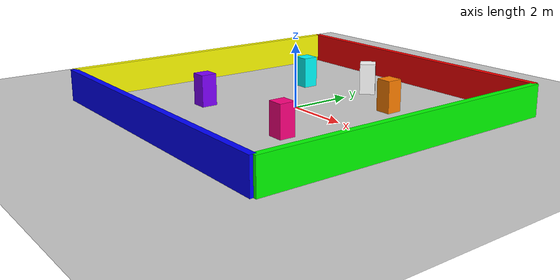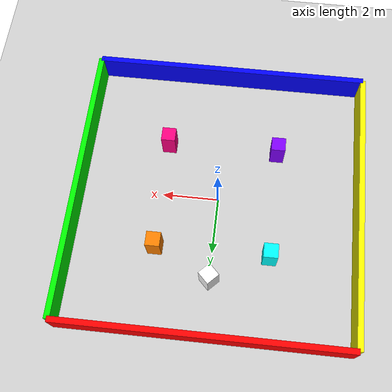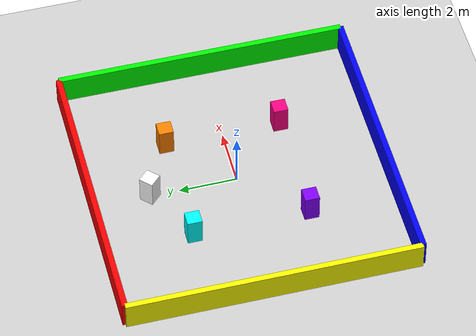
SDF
<?xml version="1.0" ?>
<sdf version="1.5">
  <world name="room">

    <include>
      <uri>model://ground_plane</uri>
    </include>

    <include>
      <uri>model://sun</uri>
    </include>

    <!-- Parede Norte - vermelha -->
    <model name="wall_north">
      <static>true</static>
      <pose>0 5 0.5 0 0 0</pose>
      <link name="link">
        <collision name="collision">
          <geometry><box><size>10 0.2 1</size></box></geometry>
        </collision>
        <visual name="visual">
          <geometry><box><size>10 0.2 1</size></box></geometry>
          <material>
            <ambient>1 0 0 1</ambient>
            <diffuse>1 0 0 1</diffuse>
          </material>
        </visual>
      </link>
    </model>

    <!-- Parede Sul - azul -->
    <model name="wall_south">
      <static>true</static>
      <pose>0 -5 0.5 0 0 0</pose>
      <link name="link">
        <collision name="collision">
          <geometry><box><size>10 0.2 1</size></box></geometry>
        </collision>
        <visual name="visual">
          <geometry><box><size>10 0.2 1</size></box></geometry>
          <material>
            <ambient>0 0 1 1</ambient>
            <diffuse>0 0 1 1</diffuse>
          </material>
        </visual>
      </link>
    </model>

    <!-- Parede Leste - verde -->
    <model name="wall_east">
      <static>true</static>
      <pose>5 0 0.5 0 0 1.5708</pose>
      <link name="link">
        <collision name="collision">
          <geometry><box><size>10 0.2 1</size></box></geometry>
        </collision>
        <visual name="visual">
          <geometry><box><size>10 0.2 1</size></box></geometry>
          <material>
            <ambient>0 1 0 1</ambient>
            <diffuse>0 1 0 1</diffuse>
          </material>
        </visual>
      </link>
    </model>

    <!-- Parede Oeste - amarela -->
    <model name="wall_west">
      <static>true</static>
      <pose>-5 0 0.5 0 0 1.5708</pose>
      <link name="link">
        <collision name="collision">
          <geometry><box><size>10 0.2 1</size></box></geometry>
        </collision>
        <visual name="visual">
          <geometry><box><size>10 0.2 1</size></box></geometry>
          <material>
            <ambient>1 1 0 1</ambient>
            <diffuse>1 1 0 1</diffuse>
          </material>
        </visual>
      </link>
    </model>

    <!-- Objeto 1 - laranja -->
    <model name="box1">
      <static>true</static>
      <pose>2 2 0.5 0 0 0</pose>
      <link name="link">
        <collision name="collision">
          <geometry><box><size>0.5 0.5 1</size></box></geometry>
        </collision>
        <visual name="visual">
          <geometry><box><size>0.5 0.5 1</size></box></geometry>
          <material>
            <ambient>1 0.5 0 1</ambient>
            <diffuse>1 0.5 0 1</diffuse>
          </material>
        </visual>
      </link>
    </model>

    <!-- Objeto 2 - roxo -->
    <model name="box2">
      <static>true</static>
      <pose>-2 -2 0.5 0 0 0</pose>
      <link name="link">
        <collision name="collision">
          <geometry><box><size>0.5 0.5 1</size></box></geometry>
        </collision>
        <visual name="visual">
          <geometry><box><size>0.5 0.5 1</size></box></geometry>
          <material>
            <ambient>0.5 0 1 1</ambient>
            <diffuse>0.5 0 1 1</diffuse>
          </material>
        </visual>
      </link>
    </model>

    <!-- Objeto 3 - ciano -->
    <model name="box3">
      <static>true</static>
      <pose>-2 2 0.5 0 0 0</pose>
      <link name="link">
        <collision name="collision">
          <geometry><box><size>0.5 0.5 1</size></box></geometry>
        </collision>
        <visual name="visual">
          <geometry><box><size>0.5 0.5 1</size></box></geometry>
          <material>
            <ambient>0 1 1 1</ambient>
            <diffuse>0 1 1 1</diffuse>
          </material>
        </visual>
      </link>
    </model>

    <!-- Objeto 4 - rosa -->
    <model name="box4">
      <static>true</static>
      <pose>2 -2 0.5 0 0 0</pose>
      <link name="link">
        <collision name="collision">
          <geometry><box><size>0.5 0.5 1</size></box></geometry>
        </collision>
        <visual name="visual">
          <geometry><box><size>0.5 0.5 1</size></box></geometry>
          <material>
            <ambient>1 0 0.5 1</ambient>
            <diffuse>1 0 0.5 1</diffuse>
          </material>
        </visual>
      </link>
    </model>

    <!-- Objeto 5 - branco -->
    <model name="box5">
      <static>true</static>
      <pose>0 3 0.5 0 0 0.785</pose>
      <link name="link">
        <collision name="collision">
          <geometry><box><size>0.5 0.5 1</size></box></geometry>
        </collision>
        <visual name="visual">
          <geometry><box><size>0.5 0.5 1</size></box></geometry>
          <material>
            <ambient>1 1 1 1</ambient>
            <diffuse>1 1 1 1</diffuse>
          </material>
        </visual>
      </link>
    </model>

  </world>
</sdf>
